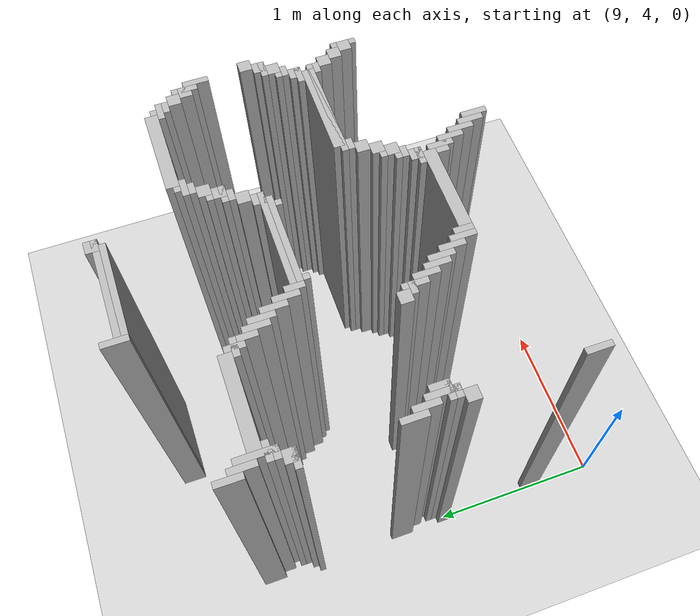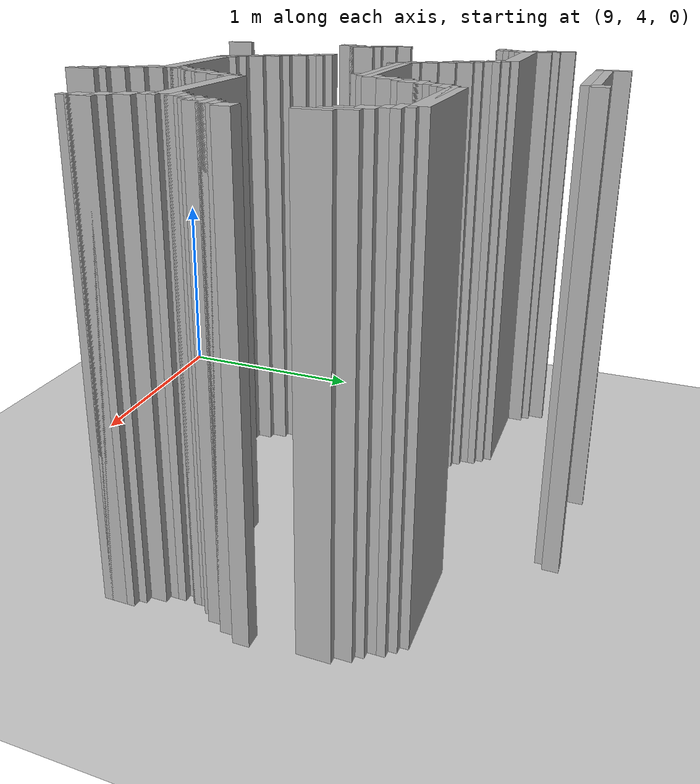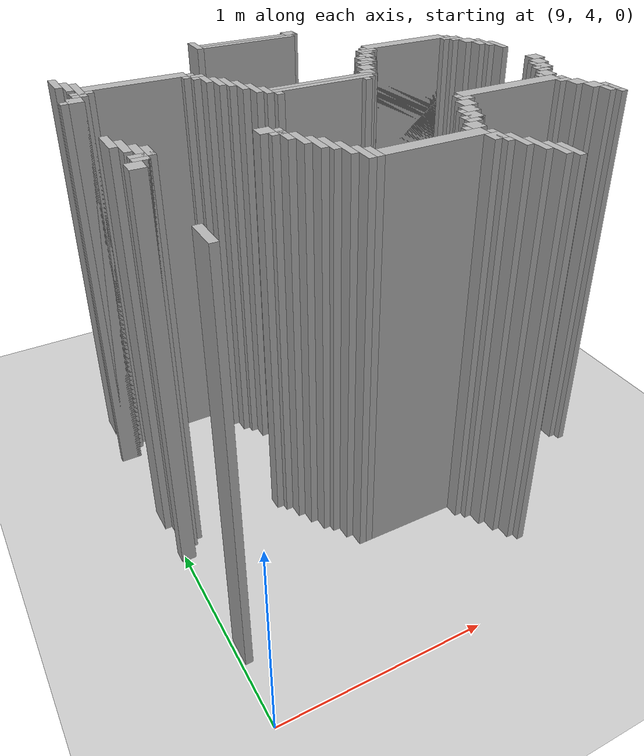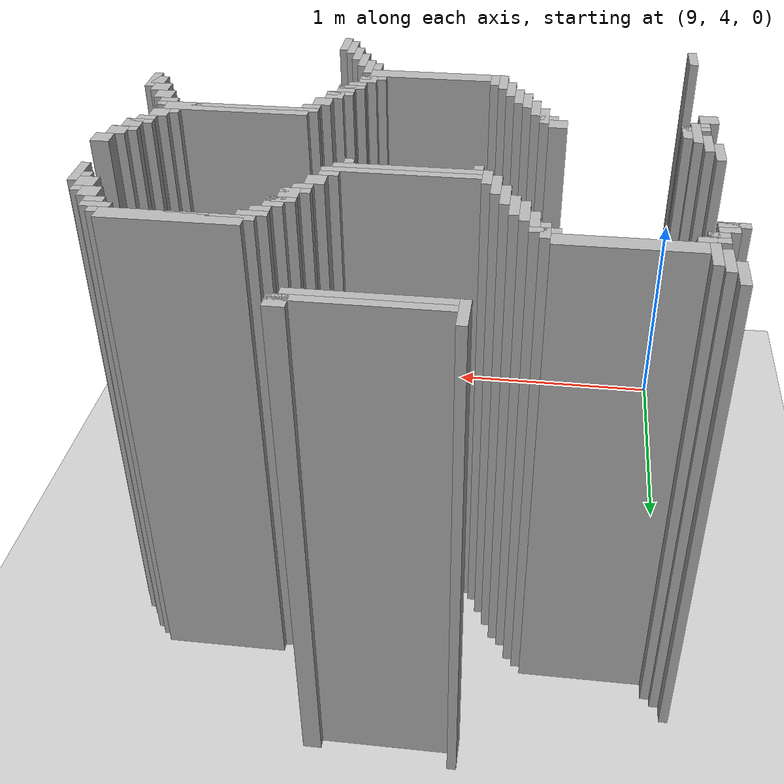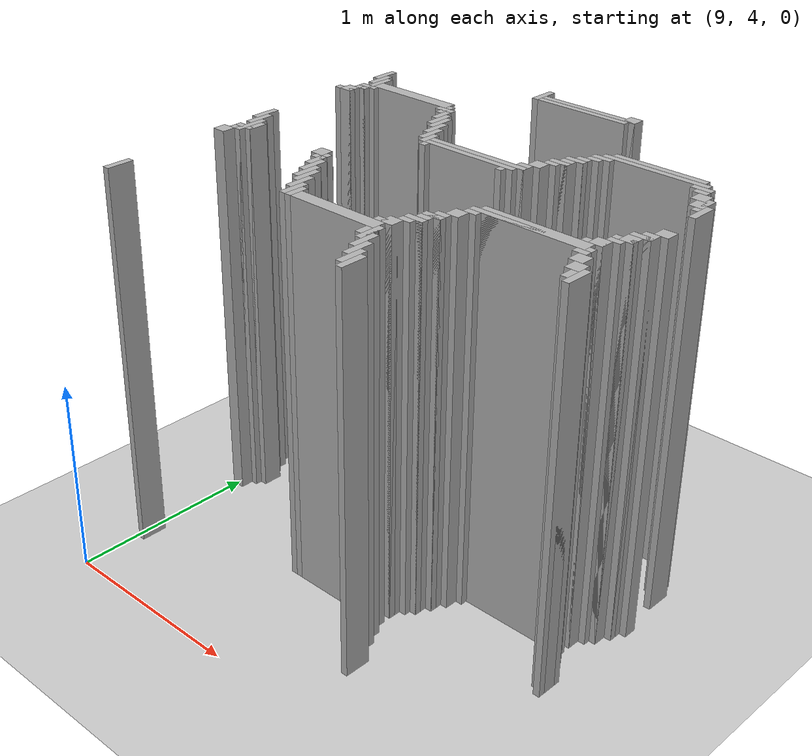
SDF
<sdf version="1.6">
 <world name="slam_world">
  <model name="ground_plane">
   <static>true</static>
   <link name="link">
    <collision name="collision">
     <geometry><plane><normal>0 0 1</normal><size>100 100</size></plane></geometry>
    </collision>
    <visual name="visual">
     <geometry><plane><normal>0 0 1</normal><size>100 100</size></plane></geometry>
     <material>
      <ambient>0.8 0.8 0.8 1</ambient>
      <diffuse>0.8 0.8 0.8 1</diffuse>
      <specular>0.8 0.8 0.8 1</specular>
     </material>
    </visual>
   </link>
  </model>
  <model name="wall_3646">
   <static>true</static>
   <pose>9.796983758700696 6.438515081206496 1.0 0 0 0</pose>
   <link name="link">
    <collision name="collision">
     <geometry><box><size>0.03480278422273782 0.13921113689095127 2.0</size></box></geometry>
    </collision>
    <visual name="visual">
     <geometry><box><size>0.03480278422273782 0.13921113689095127 2.0</size></box></geometry>
     <material><ambient>0.5 0.5 0.5 1</ambient><diffuse>0.7 0.7 0.7 1</diffuse></material>
    </visual>
   </link>
  </model>
  <model name="wall_3655">
   <static>true</static>
   <pose>10.336426914153131 6.438515081206496 1.0 0 0 0</pose>
   <link name="link">
    <collision name="collision">
     <geometry><box><size>0.06960556844547564 0.06960556844547564 2.0</size></box></geometry>
    </collision>
    <visual name="visual">
     <geometry><box><size>0.06960556844547564 0.06960556844547564 2.0</size></box></geometry>
     <material><ambient>0.5 0.5 0.5 1</ambient><diffuse>0.7 0.7 0.7 1</diffuse></material>
    </visual>
   </link>
  </model>
  <model name="wall_3667">
   <static>true</static>
   <pose>10.092807424593968 6.421113689095128 1.0 0 0 0</pose>
   <link name="link">
    <collision name="collision">
     <geometry><box><size>0.5568445475638051 0.03480278422273782 2.0</size></box></geometry>
    </collision>
    <visual name="visual">
     <geometry><box><size>0.5568445475638051 0.03480278422273782 2.0</size></box></geometry>
     <material><ambient>0.5 0.5 0.5 1</ambient><diffuse>0.7 0.7 0.7 1</diffuse></material>
    </visual>
   </link>
  </model>
  <model name="wall_3675">
   <static>true</static>
   <pose>10.075406032482599 6.386310904872389 1.0 0 0 0</pose>
   <link name="link">
    <collision name="collision">
     <geometry><box><size>0.5220417633410672 0.03480278422273782 2.0</size></box></geometry>
    </collision>
    <visual name="visual">
     <geometry><box><size>0.5220417633410672 0.03480278422273782 2.0</size></box></geometry>
     <material><ambient>0.5 0.5 0.5 1</ambient><diffuse>0.7 0.7 0.7 1</diffuse></material>
    </visual>
   </link>
  </model>
  <model name="wall_3748">
   <static>true</static>
   <pose>8.996519721577727 6.125290023201856 1.0 0 0 0</pose>
   <link name="link">
    <collision name="collision">
     <geometry><box><size>0.03480278422273782 0.13921113689095127 2.0</size></box></geometry>
    </collision>
    <visual name="visual">
     <geometry><box><size>0.03480278422273782 0.13921113689095127 2.0</size></box></geometry>
     <material><ambient>0.5 0.5 0.5 1</ambient><diffuse>0.7 0.7 0.7 1</diffuse></material>
    </visual>
   </link>
  </model>
  <model name="wall_3765">
   <static>true</static>
   <pose>9.031322505800464 6.05568445475638 1.0 0 0 0</pose>
   <link name="link">
    <collision name="collision">
     <geometry><box><size>0.03480278422273782 0.13921113689095127 2.0</size></box></geometry>
    </collision>
    <visual name="visual">
     <geometry><box><size>0.03480278422273782 0.13921113689095127 2.0</size></box></geometry>
     <material><ambient>0.5 0.5 0.5 1</ambient><diffuse>0.7 0.7 0.7 1</diffuse></material>
    </visual>
   </link>
  </model>
  <model name="wall_3778">
   <static>true</static>
   <pose>9.066125290023201 5.986078886310905 1.0 0 0 0</pose>
   <link name="link">
    <collision name="collision">
     <geometry><box><size>0.03480278422273782 0.2088167053364269 2.0</size></box></geometry>
    </collision>
    <visual name="visual">
     <geometry><box><size>0.03480278422273782 0.2088167053364269 2.0</size></box></geometry>
     <material><ambient>0.5 0.5 0.5 1</ambient><diffuse>0.7 0.7 0.7 1</diffuse></material>
    </visual>
   </link>
  </model>
  <model name="wall_3794">
   <static>true</static>
   <pose>9.327146171693736 5.986078886310905 1.0 0 0 0</pose>
   <link name="link">
    <collision name="collision">
     <geometry><box><size>0.4872389791183295 0.06960556844547564 2.0</size></box></geometry>
    </collision>
    <visual name="visual">
     <geometry><box><size>0.4872389791183295 0.06960556844547564 2.0</size></box></geometry>
     <material><ambient>0.5 0.5 0.5 1</ambient><diffuse>0.7 0.7 0.7 1</diffuse></material>
    </visual>
   </link>
  </model>
  <model name="wall_3795">
   <static>true</static>
   <pose>10.788863109048723 5.986078886310905 1.0 0 0 0</pose>
   <link name="link">
    <collision name="collision">
     <geometry><box><size>0.4872389791183295 0.06960556844547564 2.0</size></box></geometry>
    </collision>
    <visual name="visual">
     <geometry><box><size>0.4872389791183295 0.06960556844547564 2.0</size></box></geometry>
     <material><ambient>0.5 0.5 0.5 1</ambient><diffuse>0.7 0.7 0.7 1</diffuse></material>
    </visual>
   </link>
  </model>
  <model name="wall_3805">
   <static>true</static>
   <pose>9.588167053364268 5.933874709976798 1.0 0 0 0</pose>
   <link name="link">
    <collision name="collision">
     <geometry><box><size>0.03480278422273782 0.10440835266821345 2.0</size></box></geometry>
    </collision>
    <visual name="visual">
     <geometry><box><size>0.03480278422273782 0.10440835266821345 2.0</size></box></geometry>
     <material><ambient>0.5 0.5 0.5 1</ambient><diffuse>0.7 0.7 0.7 1</diffuse></material>
    </visual>
   </link>
  </model>
  <model name="wall_3806">
   <static>true</static>
   <pose>10.788863109048723 5.968677494199536 1.0 0 0 0</pose>
   <link name="link">
    <collision name="collision">
     <geometry><box><size>0.5568445475638051 0.03480278422273782 2.0</size></box></geometry>
    </collision>
    <visual name="visual">
     <geometry><box><size>0.5568445475638051 0.03480278422273782 2.0</size></box></geometry>
     <material><ambient>0.5 0.5 0.5 1</ambient><diffuse>0.7 0.7 0.7 1</diffuse></material>
    </visual>
   </link>
  </model>
  <model name="wall_3818">
   <static>true</static>
   <pose>9.066125290023201 5.933874709976798 1.0 0 0 0</pose>
   <link name="link">
    <collision name="collision">
     <geometry><box><size>0.10440835266821345 0.03480278422273782 2.0</size></box></geometry>
    </collision>
    <visual name="visual">
     <geometry><box><size>0.10440835266821345 0.03480278422273782 2.0</size></box></geometry>
     <material><ambient>0.5 0.5 0.5 1</ambient><diffuse>0.7 0.7 0.7 1</diffuse></material>
    </visual>
   </link>
  </model>
  <model name="wall_3819">
   <static>true</static>
   <pose>9.588167053364268 5.933874709976798 1.0 0 0 0</pose>
   <link name="link">
    <collision name="collision">
     <geometry><box><size>0.10440835266821345 0.03480278422273782 2.0</size></box></geometry>
    </collision>
    <visual name="visual">
     <geometry><box><size>0.10440835266821345 0.03480278422273782 2.0</size></box></geometry>
     <material><ambient>0.5 0.5 0.5 1</ambient><diffuse>0.7 0.7 0.7 1</diffuse></material>
    </visual>
   </link>
  </model>
  <model name="wall_3820">
   <static>true</static>
   <pose>10.52784222737819 5.933874709976798 1.0 0 0 0</pose>
   <link name="link">
    <collision name="collision">
     <geometry><box><size>0.10440835266821345 0.03480278422273782 2.0</size></box></geometry>
    </collision>
    <visual name="visual">
     <geometry><box><size>0.10440835266821345 0.03480278422273782 2.0</size></box></geometry>
     <material><ambient>0.5 0.5 0.5 1</ambient><diffuse>0.7 0.7 0.7 1</diffuse></material>
    </visual>
   </link>
  </model>
  <model name="wall_3821">
   <static>true</static>
   <pose>11.049883990719257 5.933874709976798 1.0 0 0 0</pose>
   <link name="link">
    <collision name="collision">
     <geometry><box><size>0.10440835266821345 0.03480278422273782 2.0</size></box></geometry>
    </collision>
    <visual name="visual">
     <geometry><box><size>0.10440835266821345 0.03480278422273782 2.0</size></box></geometry>
     <material><ambient>0.5 0.5 0.5 1</ambient><diffuse>0.7 0.7 0.7 1</diffuse></material>
    </visual>
   </link>
  </model>
  <model name="wall_3832">
   <static>true</static>
   <pose>9.048723897911833 5.89907192575406 1.0 0 0 0</pose>
   <link name="link">
    <collision name="collision">
     <geometry><box><size>0.06960556844547564 0.03480278422273782 2.0</size></box></geometry>
    </collision>
    <visual name="visual">
     <geometry><box><size>0.06960556844547564 0.03480278422273782 2.0</size></box></geometry>
     <material><ambient>0.5 0.5 0.5 1</ambient><diffuse>0.7 0.7 0.7 1</diffuse></material>
    </visual>
   </link>
  </model>
  <model name="wall_3833">
   <static>true</static>
   <pose>9.622969837587007 5.864269141531322 1.0 0 0 0</pose>
   <link name="link">
    <collision name="collision">
     <geometry><box><size>0.03480278422273782 0.10440835266821345 2.0</size></box></geometry>
    </collision>
    <visual name="visual">
     <geometry><box><size>0.03480278422273782 0.10440835266821345 2.0</size></box></geometry>
     <material><ambient>0.5 0.5 0.5 1</ambient><diffuse>0.7 0.7 0.7 1</diffuse></material>
    </visual>
   </link>
  </model>
  <model name="wall_3834">
   <static>true</static>
   <pose>10.51044083526682 5.89907192575406 1.0 0 0 0</pose>
   <link name="link">
    <collision name="collision">
     <geometry><box><size>0.06960556844547564 0.03480278422273782 2.0</size></box></geometry>
    </collision>
    <visual name="visual">
     <geometry><box><size>0.06960556844547564 0.03480278422273782 2.0</size></box></geometry>
     <material><ambient>0.5 0.5 0.5 1</ambient><diffuse>0.7 0.7 0.7 1</diffuse></material>
    </visual>
   </link>
  </model>
  <model name="wall_3835">
   <static>true</static>
   <pose>11.067285382830626 5.89907192575406 1.0 0 0 0</pose>
   <link name="link">
    <collision name="collision">
     <geometry><box><size>0.06960556844547564 0.03480278422273782 2.0</size></box></geometry>
    </collision>
    <visual name="visual">
     <geometry><box><size>0.06960556844547564 0.03480278422273782 2.0</size></box></geometry>
     <material><ambient>0.5 0.5 0.5 1</ambient><diffuse>0.7 0.7 0.7 1</diffuse></material>
    </visual>
   </link>
  </model>
  <model name="wall_3847">
   <static>true</static>
   <pose>9.013921113689095 5.846867749419953 1.0 0 0 0</pose>
   <link name="link">
    <collision name="collision">
     <geometry><box><size>0.06960556844547564 0.06960556844547564 2.0</size></box></geometry>
    </collision>
    <visual name="visual">
     <geometry><box><size>0.06960556844547564 0.06960556844547564 2.0</size></box></geometry>
     <material><ambient>0.5 0.5 0.5 1</ambient><diffuse>0.7 0.7 0.7 1</diffuse></material>
    </visual>
   </link>
  </model>
  <model name="wall_3848">
   <static>true</static>
   <pose>9.657772621809745 5.812064965197216 1.0 0 0 0</pose>
   <link name="link">
    <collision name="collision">
     <geometry><box><size>0.03480278422273782 0.13921113689095127 2.0</size></box></geometry>
    </collision>
    <visual name="visual">
     <geometry><box><size>0.03480278422273782 0.13921113689095127 2.0</size></box></geometry>
     <material><ambient>0.5 0.5 0.5 1</ambient><diffuse>0.7 0.7 0.7 1</diffuse></material>
    </visual>
   </link>
  </model>
  <model name="wall_3849">
   <static>true</static>
   <pose>10.475638051044083 5.846867749419953 1.0 0 0 0</pose>
   <link name="link">
    <collision name="collision">
     <geometry><box><size>0.06960556844547564 0.06960556844547564 2.0</size></box></geometry>
    </collision>
    <visual name="visual">
     <geometry><box><size>0.06960556844547564 0.06960556844547564 2.0</size></box></geometry>
     <material><ambient>0.5 0.5 0.5 1</ambient><diffuse>0.7 0.7 0.7 1</diffuse></material>
    </visual>
   </link>
  </model>
  <model name="wall_3850">
   <static>true</static>
   <pose>11.102088167053363 5.846867749419953 1.0 0 0 0</pose>
   <link name="link">
    <collision name="collision">
     <geometry><box><size>0.06960556844547564 0.06960556844547564 2.0</size></box></geometry>
    </collision>
    <visual name="visual">
     <geometry><box><size>0.06960556844547564 0.06960556844547564 2.0</size></box></geometry>
     <material><ambient>0.5 0.5 0.5 1</ambient><diffuse>0.7 0.7 0.7 1</diffuse></material>
    </visual>
   </link>
  </model>
  <model name="wall_3863">
   <static>true</static>
   <pose>8.996519721577727 5.8294663573085845 1.0 0 0 0</pose>
   <link name="link">
    <collision name="collision">
     <geometry><box><size>0.10440835266821345 0.03480278422273782 2.0</size></box></geometry>
    </collision>
    <visual name="visual">
     <geometry><box><size>0.10440835266821345 0.03480278422273782 2.0</size></box></geometry>
     <material><ambient>0.5 0.5 0.5 1</ambient><diffuse>0.7 0.7 0.7 1</diffuse></material>
    </visual>
   </link>
  </model>
  <model name="wall_3864">
   <static>true</static>
   <pose>9.692575406032482 5.7772621809744775 1.0 0 0 0</pose>
   <link name="link">
    <collision name="collision">
     <geometry><box><size>0.03480278422273782 0.13921113689095127 2.0</size></box></geometry>
    </collision>
    <visual name="visual">
     <geometry><box><size>0.03480278422273782 0.13921113689095127 2.0</size></box></geometry>
     <material><ambient>0.5 0.5 0.5 1</ambient><diffuse>0.7 0.7 0.7 1</diffuse></material>
    </visual>
   </link>
  </model>
  <model name="wall_3865">
   <static>true</static>
   <pose>10.458236658932714 5.8294663573085845 1.0 0 0 0</pose>
   <link name="link">
    <collision name="collision">
     <geometry><box><size>0.10440835266821345 0.03480278422273782 2.0</size></box></geometry>
    </collision>
    <visual name="visual">
     <geometry><box><size>0.10440835266821345 0.03480278422273782 2.0</size></box></geometry>
     <material><ambient>0.5 0.5 0.5 1</ambient><diffuse>0.7 0.7 0.7 1</diffuse></material>
    </visual>
   </link>
  </model>
  <model name="wall_3866">
   <static>true</static>
   <pose>11.154292343387471 5.7772621809744775 1.0 0 0 0</pose>
   <link name="link">
    <collision name="collision">
     <geometry><box><size>0.03480278422273782 0.13921113689095127 2.0</size></box></geometry>
    </collision>
    <visual name="visual">
     <geometry><box><size>0.03480278422273782 0.13921113689095127 2.0</size></box></geometry>
     <material><ambient>0.5 0.5 0.5 1</ambient><diffuse>0.7 0.7 0.7 1</diffuse></material>
    </visual>
   </link>
  </model>
  <model name="wall_3879">
   <static>true</static>
   <pose>10.440835266821345 5.7772621809744775 1.0 0 0 0</pose>
   <link name="link">
    <collision name="collision">
     <geometry><box><size>0.06960556844547564 0.06960556844547564 2.0</size></box></geometry>
    </collision>
    <visual name="visual">
     <geometry><box><size>0.06960556844547564 0.06960556844547564 2.0</size></box></geometry>
     <material><ambient>0.5 0.5 0.5 1</ambient><diffuse>0.7 0.7 0.7 1</diffuse></material>
    </visual>
   </link>
  </model>
  <model name="wall_3880">
   <static>true</static>
   <pose>11.1368909512761 5.7772621809744775 1.0 0 0 0</pose>
   <link name="link">
    <collision name="collision">
     <geometry><box><size>0.06960556844547564 0.06960556844547564 2.0</size></box></geometry>
    </collision>
    <visual name="visual">
     <geometry><box><size>0.06960556844547564 0.06960556844547564 2.0</size></box></geometry>
     <material><ambient>0.5 0.5 0.5 1</ambient><diffuse>0.7 0.7 0.7 1</diffuse></material>
    </visual>
   </link>
  </model>
  <model name="wall_3893">
   <static>true</static>
   <pose>9.72737819025522 5.707656612529002 1.0 0 0 0</pose>
   <link name="link">
    <collision name="collision">
     <geometry><box><size>0.03480278422273782 0.13921113689095127 2.0</size></box></geometry>
    </collision>
    <visual name="visual">
     <geometry><box><size>0.03480278422273782 0.13921113689095127 2.0</size></box></geometry>
     <material><ambient>0.5 0.5 0.5 1</ambient><diffuse>0.7 0.7 0.7 1</diffuse></material>
    </visual>
   </link>
  </model>
  <model name="wall_3894">
   <static>true</static>
   <pose>10.423433874709977 5.759860788863109 1.0 0 0 0</pose>
   <link name="link">
    <collision name="collision">
     <geometry><box><size>0.10440835266821345 0.03480278422273782 2.0</size></box></geometry>
    </collision>
    <visual name="visual">
     <geometry><box><size>0.10440835266821345 0.03480278422273782 2.0</size></box></geometry>
     <material><ambient>0.5 0.5 0.5 1</ambient><diffuse>0.7 0.7 0.7 1</diffuse></material>
    </visual>
   </link>
  </model>
  <model name="wall_3895">
   <static>true</static>
   <pose>11.189095127610209 5.707656612529002 1.0 0 0 0</pose>
   <link name="link">
    <collision name="collision">
     <geometry><box><size>0.03480278422273782 0.13921113689095127 2.0</size></box></geometry>
    </collision>
    <visual name="visual">
     <geometry><box><size>0.03480278422273782 0.13921113689095127 2.0</size></box></geometry>
     <material><ambient>0.5 0.5 0.5 1</ambient><diffuse>0.7 0.7 0.7 1</diffuse></material>
    </visual>
   </link>
  </model>
  <model name="wall_3904">
   <static>true</static>
   <pose>10.406032482598608 5.725058004640371 1.0 0 0 0</pose>
   <link name="link">
    <collision name="collision">
     <geometry><box><size>0.06960556844547564 0.03480278422273782 2.0</size></box></geometry>
    </collision>
    <visual name="visual">
     <geometry><box><size>0.06960556844547564 0.03480278422273782 2.0</size></box></geometry>
     <material><ambient>0.5 0.5 0.5 1</ambient><diffuse>0.7 0.7 0.7 1</diffuse></material>
    </visual>
   </link>
  </model>
  <model name="wall_3917">
   <static>true</static>
   <pose>9.762180974477959 5.638051044083526 1.0 0 0 0</pose>
   <link name="link">
    <collision name="collision">
     <geometry><box><size>0.03480278422273782 0.13921113689095127 2.0</size></box></geometry>
    </collision>
    <visual name="visual">
     <geometry><box><size>0.03480278422273782 0.13921113689095127 2.0</size></box></geometry>
     <material><ambient>0.5 0.5 0.5 1</ambient><diffuse>0.7 0.7 0.7 1</diffuse></material>
    </visual>
   </link>
  </model>
  <model name="wall_3918">
   <static>true</static>
   <pose>10.37122969837587 5.672853828306264 1.0 0 0 0</pose>
   <link name="link">
    <collision name="collision">
     <geometry><box><size>0.06960556844547564 0.06960556844547564 2.0</size></box></geometry>
    </collision>
    <visual name="visual">
     <geometry><box><size>0.06960556844547564 0.06960556844547564 2.0</size></box></geometry>
     <material><ambient>0.5 0.5 0.5 1</ambient><diffuse>0.7 0.7 0.7 1</diffuse></material>
    </visual>
   </link>
  </model>
  <model name="wall_3933">
   <static>true</static>
   <pose>9.796983758700696 5.58584686774942 1.0 0 0 0</pose>
   <link name="link">
    <collision name="collision">
     <geometry><box><size>0.03480278422273782 0.10440835266821345 2.0</size></box></geometry>
    </collision>
    <visual name="visual">
     <geometry><box><size>0.03480278422273782 0.10440835266821345 2.0</size></box></geometry>
     <material><ambient>0.5 0.5 0.5 1</ambient><diffuse>0.7 0.7 0.7 1</diffuse></material>
    </visual>
   </link>
  </model>
  <model name="wall_3934">
   <static>true</static>
   <pose>10.336426914153131 5.603248259860789 1.0 0 0 0</pose>
   <link name="link">
    <collision name="collision">
     <geometry><box><size>0.06960556844547564 0.06960556844547564 2.0</size></box></geometry>
    </collision>
    <visual name="visual">
     <geometry><box><size>0.06960556844547564 0.06960556844547564 2.0</size></box></geometry>
     <material><ambient>0.5 0.5 0.5 1</ambient><diffuse>0.7 0.7 0.7 1</diffuse></material>
    </visual>
   </link>
  </model>
  <model name="wall_3949">
   <static>true</static>
   <pose>10.092807424593968 5.58584686774942 1.0 0 0 0</pose>
   <link name="link">
    <collision name="collision">
     <geometry><box><size>0.5568445475638051 0.03480278422273782 2.0</size></box></geometry>
    </collision>
    <visual name="visual">
     <geometry><box><size>0.5568445475638051 0.03480278422273782 2.0</size></box></geometry>
     <material><ambient>0.5 0.5 0.5 1</ambient><diffuse>0.7 0.7 0.7 1</diffuse></material>
    </visual>
   </link>
  </model>
  <model name="wall_3963">
   <static>true</static>
   <pose>10.075406032482599 5.551044083526682 1.0 0 0 0</pose>
   <link name="link">
    <collision name="collision">
     <geometry><box><size>0.5220417633410672 0.03480278422273782 2.0</size></box></geometry>
    </collision>
    <visual name="visual">
     <geometry><box><size>0.5220417633410672 0.03480278422273782 2.0</size></box></geometry>
     <material><ambient>0.5 0.5 0.5 1</ambient><diffuse>0.7 0.7 0.7 1</diffuse></material>
    </visual>
   </link>
  </model>
  <model name="wall_3978">
   <static>true</static>
   <pose>9.831786542923433 5.516241299303944 1.0 0 0 0</pose>
   <link name="link">
    <collision name="collision">
     <geometry><box><size>0.03480278422273782 0.03480278422273782 2.0</size></box></geometry>
    </collision>
    <visual name="visual">
     <geometry><box><size>0.03480278422273782 0.03480278422273782 2.0</size></box></geometry>
     <material><ambient>0.5 0.5 0.5 1</ambient><diffuse>0.7 0.7 0.7 1</diffuse></material>
    </visual>
   </link>
  </model>
  <model name="wall_3979">
   <static>true</static>
   <pose>10.284222737819025 5.516241299303944 1.0 0 0 0</pose>
   <link name="link">
    <collision name="collision">
     <geometry><box><size>0.03480278422273782 0.03480278422273782 2.0</size></box></geometry>
    </collision>
    <visual name="visual">
     <geometry><box><size>0.03480278422273782 0.03480278422273782 2.0</size></box></geometry>
     <material><ambient>0.5 0.5 0.5 1</ambient><diffuse>0.7 0.7 0.7 1</diffuse></material>
    </visual>
   </link>
  </model>
  <model name="wall_4006">
   <static>true</static>
   <pose>11.206496519721577 5.4292343387471 1.0 0 0 0</pose>
   <link name="link">
    <collision name="collision">
     <geometry><box><size>0.06960556844547564 0.06960556844547564 2.0</size></box></geometry>
    </collision>
    <visual name="visual">
     <geometry><box><size>0.06960556844547564 0.06960556844547564 2.0</size></box></geometry>
     <material><ambient>0.5 0.5 0.5 1</ambient><diffuse>0.7 0.7 0.7 1</diffuse></material>
    </visual>
   </link>
  </model>
  <model name="wall_4019">
   <static>true</static>
   <pose>11.17169373549884 5.359628770301624 1.0 0 0 0</pose>
   <link name="link">
    <collision name="collision">
     <geometry><box><size>0.06960556844547564 0.06960556844547564 2.0</size></box></geometry>
    </collision>
    <visual name="visual">
     <geometry><box><size>0.06960556844547564 0.06960556844547564 2.0</size></box></geometry>
     <material><ambient>0.5 0.5 0.5 1</ambient><diffuse>0.7 0.7 0.7 1</diffuse></material>
    </visual>
   </link>
  </model>
  <model name="wall_4031">
   <static>true</static>
   <pose>8.996519721577727 5.290023201856148 1.0 0 0 0</pose>
   <link name="link">
    <collision name="collision">
     <geometry><box><size>0.03480278422273782 0.13921113689095127 2.0</size></box></geometry>
    </collision>
    <visual name="visual">
     <geometry><box><size>0.03480278422273782 0.13921113689095127 2.0</size></box></geometry>
     <material><ambient>0.5 0.5 0.5 1</ambient><diffuse>0.7 0.7 0.7 1</diffuse></material>
    </visual>
   </link>
  </model>
  <model name="wall_4032">
   <static>true</static>
   <pose>11.154292343387471 5.342227378190255 1.0 0 0 0</pose>
   <link name="link">
    <collision name="collision">
     <geometry><box><size>0.10440835266821345 0.03480278422273782 2.0</size></box></geometry>
    </collision>
    <visual name="visual">
     <geometry><box><size>0.10440835266821345 0.03480278422273782 2.0</size></box></geometry>
     <material><ambient>0.5 0.5 0.5 1</ambient><diffuse>0.7 0.7 0.7 1</diffuse></material>
    </visual>
   </link>
  </model>
  <model name="wall_4040">
   <static>true</static>
   <pose>11.1368909512761 5.290023201856148 1.0 0 0 0</pose>
   <link name="link">
    <collision name="collision">
     <geometry><box><size>0.06960556844547564 0.06960556844547564 2.0</size></box></geometry>
    </collision>
    <visual name="visual">
     <geometry><box><size>0.06960556844547564 0.06960556844547564 2.0</size></box></geometry>
     <material><ambient>0.5 0.5 0.5 1</ambient><diffuse>0.7 0.7 0.7 1</diffuse></material>
    </visual>
   </link>
  </model>
  <model name="wall_4051">
   <static>true</static>
   <pose>9.031322505800464 5.220417633410673 1.0 0 0 0</pose>
   <link name="link">
    <collision name="collision">
     <geometry><box><size>0.03480278422273782 0.13921113689095127 2.0</size></box></geometry>
    </collision>
    <visual name="visual">
     <geometry><box><size>0.03480278422273782 0.13921113689095127 2.0</size></box></geometry>
     <material><ambient>0.5 0.5 0.5 1</ambient><diffuse>0.7 0.7 0.7 1</diffuse></material>
    </visual>
   </link>
  </model>
  <model name="wall_4052">
   <static>true</static>
   <pose>11.119489559164732 5.27262180974478 1.0 0 0 0</pose>
   <link name="link">
    <collision name="collision">
     <geometry><box><size>0.10440835266821345 0.03480278422273782 2.0</size></box></geometry>
    </collision>
    <visual name="visual">
     <geometry><box><size>0.10440835266821345 0.03480278422273782 2.0</size></box></geometry>
     <material><ambient>0.5 0.5 0.5 1</ambient><diffuse>0.7 0.7 0.7 1</diffuse></material>
    </visual>
   </link>
  </model>
  <model name="wall_4060">
   <static>true</static>
   <pose>11.102088167053363 5.237819025522041 1.0 0 0 0</pose>
   <link name="link">
    <collision name="collision">
     <geometry><box><size>0.06960556844547564 0.03480278422273782 2.0</size></box></geometry>
    </collision>
    <visual name="visual">
     <geometry><box><size>0.06960556844547564 0.03480278422273782 2.0</size></box></geometry>
     <material><ambient>0.5 0.5 0.5 1</ambient><diffuse>0.7 0.7 0.7 1</diffuse></material>
    </visual>
   </link>
  </model>
  <model name="wall_4070">
   <static>true</static>
   <pose>9.066125290023201 5.133410672853828 1.0 0 0 0</pose>
   <link name="link">
    <collision name="collision">
     <geometry><box><size>0.03480278422273782 0.17401392111368907 2.0</size></box></geometry>
    </collision>
    <visual name="visual">
     <geometry><box><size>0.03480278422273782 0.17401392111368907 2.0</size></box></geometry>
     <material><ambient>0.5 0.5 0.5 1</ambient><diffuse>0.7 0.7 0.7 1</diffuse></material>
    </visual>
   </link>
  </model>
  <model name="wall_4071">
   <static>true</static>
   <pose>11.067285382830626 5.185614849187935 1.0 0 0 0</pose>
   <link name="link">
    <collision name="collision">
     <geometry><box><size>0.06960556844547564 0.06960556844547564 2.0</size></box></geometry>
    </collision>
    <visual name="visual">
     <geometry><box><size>0.06960556844547564 0.06960556844547564 2.0</size></box></geometry>
     <material><ambient>0.5 0.5 0.5 1</ambient><diffuse>0.7 0.7 0.7 1</diffuse></material>
    </visual>
   </link>
  </model>
  <model name="wall_4083">
   <static>true</static>
   <pose>9.100928074245939 5.133410672853828 1.0 0 0 0</pose>
   <link name="link">
    <collision name="collision">
     <geometry><box><size>0.03480278422273782 0.10440835266821345 2.0</size></box></geometry>
    </collision>
    <visual name="visual">
     <geometry><box><size>0.03480278422273782 0.10440835266821345 2.0</size></box></geometry>
     <material><ambient>0.5 0.5 0.5 1</ambient><diffuse>0.7 0.7 0.7 1</diffuse></material>
    </visual>
   </link>
  </model>
  <model name="wall_4084">
   <static>true</static>
   <pose>11.049883990719257 5.168213457076566 1.0 0 0 0</pose>
   <link name="link">
    <collision name="collision">
     <geometry><box><size>0.10440835266821345 0.03480278422273782 2.0</size></box></geometry>
    </collision>
    <visual name="visual">
     <geometry><box><size>0.10440835266821345 0.03480278422273782 2.0</size></box></geometry>
     <material><ambient>0.5 0.5 0.5 1</ambient><diffuse>0.7 0.7 0.7 1</diffuse></material>
    </visual>
   </link>
  </model>
  <model name="wall_4094">
   <static>true</static>
   <pose>9.5707656612529 5.1160092807424595 1.0 0 0 0</pose>
   <link name="link">
    <collision name="collision">
     <geometry><box><size>0.06960556844547564 0.06960556844547564 2.0</size></box></geometry>
    </collision>
    <visual name="visual">
     <geometry><box><size>0.06960556844547564 0.06960556844547564 2.0</size></box></geometry>
     <material><ambient>0.5 0.5 0.5 1</ambient><diffuse>0.7 0.7 0.7 1</diffuse></material>
    </visual>
   </link>
  </model>
  <model name="wall_4095">
   <static>true</static>
   <pose>10.788863109048723 5.1160092807424595 1.0 0 0 0</pose>
   <link name="link">
    <collision name="collision">
     <geometry><box><size>0.5568445475638051 0.06960556844547564 2.0</size></box></geometry>
    </collision>
    <visual name="visual">
     <geometry><box><size>0.5568445475638051 0.06960556844547564 2.0</size></box></geometry>
     <material><ambient>0.5 0.5 0.5 1</ambient><diffuse>0.7 0.7 0.7 1</diffuse></material>
    </visual>
   </link>
  </model>
  <model name="wall_4105">
   <static>true</static>
   <pose>9.066125290023201 5.09860788863109 1.0 0 0 0</pose>
   <link name="link">
    <collision name="collision">
     <geometry><box><size>0.10440835266821345 0.03480278422273782 2.0</size></box></geometry>
    </collision>
    <visual name="visual">
     <geometry><box><size>0.10440835266821345 0.03480278422273782 2.0</size></box></geometry>
     <material><ambient>0.5 0.5 0.5 1</ambient><diffuse>0.7 0.7 0.7 1</diffuse></material>
    </visual>
   </link>
  </model>
  <model name="wall_4106">
   <static>true</static>
   <pose>9.622969837587007 5.046403712296984 1.0 0 0 0</pose>
   <link name="link">
    <collision name="collision">
     <geometry><box><size>0.03480278422273782 0.13921113689095127 2.0</size></box></geometry>
    </collision>
    <visual name="visual">
     <geometry><box><size>0.03480278422273782 0.13921113689095127 2.0</size></box></geometry>
     <material><ambient>0.5 0.5 0.5 1</ambient><diffuse>0.7 0.7 0.7 1</diffuse></material>
    </visual>
   </link>
  </model>
  <model name="wall_4107">
   <static>true</static>
   <pose>10.788863109048723 5.09860788863109 1.0 0 0 0</pose>
   <link name="link">
    <collision name="collision">
     <geometry><box><size>0.6264501160092807 0.03480278422273782 2.0</size></box></geometry>
    </collision>
    <visual name="visual">
     <geometry><box><size>0.6264501160092807 0.03480278422273782 2.0</size></box></geometry>
     <material><ambient>0.5 0.5 0.5 1</ambient><diffuse>0.7 0.7 0.7 1</diffuse></material>
    </visual>
   </link>
  </model>
  <model name="wall_4119">
   <static>true</static>
   <pose>9.048723897911833 5.0638051044083525 1.0 0 0 0</pose>
   <link name="link">
    <collision name="collision">
     <geometry><box><size>0.06960556844547564 0.03480278422273782 2.0</size></box></geometry>
    </collision>
    <visual name="visual">
     <geometry><box><size>0.06960556844547564 0.03480278422273782 2.0</size></box></geometry>
     <material><ambient>0.5 0.5 0.5 1</ambient><diffuse>0.7 0.7 0.7 1</diffuse></material>
    </visual>
   </link>
  </model>
  <model name="wall_4120">
   <static>true</static>
   <pose>9.605568445475638 5.0638051044083525 1.0 0 0 0</pose>
   <link name="link">
    <collision name="collision">
     <geometry><box><size>0.06960556844547564 0.03480278422273782 2.0</size></box></geometry>
    </collision>
    <visual name="visual">
     <geometry><box><size>0.06960556844547564 0.03480278422273782 2.0</size></box></geometry>
     <material><ambient>0.5 0.5 0.5 1</ambient><diffuse>0.7 0.7 0.7 1</diffuse></material>
    </visual>
   </link>
  </model>
  <model name="wall_4121">
   <static>true</static>
   <pose>10.51044083526682 5.0638051044083525 1.0 0 0 0</pose>
   <link name="link">
    <collision name="collision">
     <geometry><box><size>0.06960556844547564 0.03480278422273782 2.0</size></box></geometry>
    </collision>
    <visual name="visual">
     <geometry><box><size>0.06960556844547564 0.03480278422273782 2.0</size></box></geometry>
     <material><ambient>0.5 0.5 0.5 1</ambient><diffuse>0.7 0.7 0.7 1</diffuse></material>
    </visual>
   </link>
  </model>
  <model name="wall_4122">
   <static>true</static>
   <pose>11.067285382830626 5.0638051044083525 1.0 0 0 0</pose>
   <link name="link">
    <collision name="collision">
     <geometry><box><size>0.06960556844547564 0.03480278422273782 2.0</size></box></geometry>
    </collision>
    <visual name="visual">
     <geometry><box><size>0.06960556844547564 0.03480278422273782 2.0</size></box></geometry>
     <material><ambient>0.5 0.5 0.5 1</ambient><diffuse>0.7 0.7 0.7 1</diffuse></material>
    </visual>
   </link>
  </model>
  <model name="wall_4134">
   <static>true</static>
   <pose>9.013921113689095 5.0116009280742455 1.0 0 0 0</pose>
   <link name="link">
    <collision name="collision">
     <geometry><box><size>0.06960556844547564 0.06960556844547564 2.0</size></box></geometry>
    </collision>
    <visual name="visual">
     <geometry><box><size>0.06960556844547564 0.06960556844547564 2.0</size></box></geometry>
     <material><ambient>0.5 0.5 0.5 1</ambient><diffuse>0.7 0.7 0.7 1</diffuse></material>
    </visual>
   </link>
  </model>
  <model name="wall_4135">
   <static>true</static>
   <pose>9.657772621809745 4.976798143851508 1.0 0 0 0</pose>
   <link name="link">
    <collision name="collision">
     <geometry><box><size>0.03480278422273782 0.13921113689095127 2.0</size></box></geometry>
    </collision>
    <visual name="visual">
     <geometry><box><size>0.03480278422273782 0.13921113689095127 2.0</size></box></geometry>
     <material><ambient>0.5 0.5 0.5 1</ambient><diffuse>0.7 0.7 0.7 1</diffuse></material>
    </visual>
   </link>
  </model>
  <model name="wall_4136">
   <static>true</static>
   <pose>10.475638051044083 5.0116009280742455 1.0 0 0 0</pose>
   <link name="link">
    <collision name="collision">
     <geometry><box><size>0.06960556844547564 0.06960556844547564 2.0</size></box></geometry>
    </collision>
    <visual name="visual">
     <geometry><box><size>0.06960556844547564 0.06960556844547564 2.0</size></box></geometry>
     <material><ambient>0.5 0.5 0.5 1</ambient><diffuse>0.7 0.7 0.7 1</diffuse></material>
    </visual>
   </link>
  </model>
  <model name="wall_4137">
   <static>true</static>
   <pose>11.102088167053363 5.0116009280742455 1.0 0 0 0</pose>
   <link name="link">
    <collision name="collision">
     <geometry><box><size>0.06960556844547564 0.06960556844547564 2.0</size></box></geometry>
    </collision>
    <visual name="visual">
     <geometry><box><size>0.06960556844547564 0.06960556844547564 2.0</size></box></geometry>
     <material><ambient>0.5 0.5 0.5 1</ambient><diffuse>0.7 0.7 0.7 1</diffuse></material>
    </visual>
   </link>
  </model>
  <model name="wall_4150">
   <static>true</static>
   <pose>9.692575406032482 4.907192575406032 1.0 0 0 0</pose>
   <link name="link">
    <collision name="collision">
     <geometry><box><size>0.03480278422273782 0.13921113689095127 2.0</size></box></geometry>
    </collision>
    <visual name="visual">
     <geometry><box><size>0.03480278422273782 0.13921113689095127 2.0</size></box></geometry>
     <material><ambient>0.5 0.5 0.5 1</ambient><diffuse>0.7 0.7 0.7 1</diffuse></material>
    </visual>
   </link>
  </model>
  <model name="wall_4151">
   <static>true</static>
   <pose>10.440835266821345 4.94199535962877 1.0 0 0 0</pose>
   <link name="link">
    <collision name="collision">
     <geometry><box><size>0.06960556844547564 0.06960556844547564 2.0</size></box></geometry>
    </collision>
    <visual name="visual">
     <geometry><box><size>0.06960556844547564 0.06960556844547564 2.0</size></box></geometry>
     <material><ambient>0.5 0.5 0.5 1</ambient><diffuse>0.7 0.7 0.7 1</diffuse></material>
    </visual>
   </link>
  </model>
  <model name="wall_4152">
   <static>true</static>
   <pose>11.1368909512761 4.94199535962877 1.0 0 0 0</pose>
   <link name="link">
    <collision name="collision">
     <geometry><box><size>0.06960556844547564 0.06960556844547564 2.0</size></box></geometry>
    </collision>
    <visual name="visual">
     <geometry><box><size>0.06960556844547564 0.06960556844547564 2.0</size></box></geometry>
     <material><ambient>0.5 0.5 0.5 1</ambient><diffuse>0.7 0.7 0.7 1</diffuse></material>
    </visual>
   </link>
  </model>
  <model name="wall_4165">
   <static>true</static>
   <pose>9.72737819025522 4.872389791183294 1.0 0 0 0</pose>
   <link name="link">
    <collision name="collision">
     <geometry><box><size>0.03480278422273782 0.13921113689095127 2.0</size></box></geometry>
    </collision>
    <visual name="visual">
     <geometry><box><size>0.03480278422273782 0.13921113689095127 2.0</size></box></geometry>
     <material><ambient>0.5 0.5 0.5 1</ambient><diffuse>0.7 0.7 0.7 1</diffuse></material>
    </visual>
   </link>
  </model>
  <model name="wall_4166">
   <static>true</static>
   <pose>10.423433874709977 4.924593967517401 1.0 0 0 0</pose>
   <link name="link">
    <collision name="collision">
     <geometry><box><size>0.10440835266821345 0.03480278422273782 2.0</size></box></geometry>
    </collision>
    <visual name="visual">
     <geometry><box><size>0.10440835266821345 0.03480278422273782 2.0</size></box></geometry>
     <material><ambient>0.5 0.5 0.5 1</ambient><diffuse>0.7 0.7 0.7 1</diffuse></material>
    </visual>
   </link>
  </model>
  <model name="wall_4167">
   <static>true</static>
   <pose>11.189095127610209 4.872389791183294 1.0 0 0 0</pose>
   <link name="link">
    <collision name="collision">
     <geometry><box><size>0.03480278422273782 0.13921113689095127 2.0</size></box></geometry>
    </collision>
    <visual name="visual">
     <geometry><box><size>0.03480278422273782 0.13921113689095127 2.0</size></box></geometry>
     <material><ambient>0.5 0.5 0.5 1</ambient><diffuse>0.7 0.7 0.7 1</diffuse></material>
    </visual>
   </link>
  </model>
  <model name="wall_4177">
   <static>true</static>
   <pose>10.406032482598608 4.872389791183294 1.0 0 0 0</pose>
   <link name="link">
    <collision name="collision">
     <geometry><box><size>0.06960556844547564 0.06960556844547564 2.0</size></box></geometry>
    </collision>
    <visual name="visual">
     <geometry><box><size>0.06960556844547564 0.06960556844547564 2.0</size></box></geometry>
     <material><ambient>0.5 0.5 0.5 1</ambient><diffuse>0.7 0.7 0.7 1</diffuse></material>
    </visual>
   </link>
  </model>
  <model name="wall_4178">
   <static>true</static>
   <pose>11.17169373549884 4.872389791183294 1.0 0 0 0</pose>
   <link name="link">
    <collision name="collision">
     <geometry><box><size>0.06960556844547564 0.06960556844547564 2.0</size></box></geometry>
    </collision>
    <visual name="visual">
     <geometry><box><size>0.06960556844547564 0.06960556844547564 2.0</size></box></geometry>
     <material><ambient>0.5 0.5 0.5 1</ambient><diffuse>0.7 0.7 0.7 1</diffuse></material>
    </visual>
   </link>
  </model>
  <model name="wall_4190">
   <static>true</static>
   <pose>9.762180974477959 4.802784222737819 1.0 0 0 0</pose>
   <link name="link">
    <collision name="collision">
     <geometry><box><size>0.03480278422273782 0.13921113689095127 2.0</size></box></geometry>
    </collision>
    <visual name="visual">
     <geometry><box><size>0.03480278422273782 0.13921113689095127 2.0</size></box></geometry>
     <material><ambient>0.5 0.5 0.5 1</ambient><diffuse>0.7 0.7 0.7 1</diffuse></material>
    </visual>
   </link>
  </model>
  <model name="wall_4191">
   <static>true</static>
   <pose>10.38863109048724 4.854988399071925 1.0 0 0 0</pose>
   <link name="link">
    <collision name="collision">
     <geometry><box><size>0.10440835266821345 0.03480278422273782 2.0</size></box></geometry>
    </collision>
    <visual name="visual">
     <geometry><box><size>0.10440835266821345 0.03480278422273782 2.0</size></box></geometry>
     <material><ambient>0.5 0.5 0.5 1</ambient><diffuse>0.7 0.7 0.7 1</diffuse></material>
    </visual>
   </link>
  </model>
  <model name="wall_4200">
   <static>true</static>
   <pose>10.37122969837587 4.820185614849188 1.0 0 0 0</pose>
   <link name="link">
    <collision name="collision">
     <geometry><box><size>0.06960556844547564 0.03480278422273782 2.0</size></box></geometry>
    </collision>
    <visual name="visual">
     <geometry><box><size>0.06960556844547564 0.03480278422273782 2.0</size></box></geometry>
     <material><ambient>0.5 0.5 0.5 1</ambient><diffuse>0.7 0.7 0.7 1</diffuse></material>
    </visual>
   </link>
  </model>
  <model name="wall_4212">
   <static>true</static>
   <pose>9.796983758700696 4.7331786542923435 1.0 0 0 0</pose>
   <link name="link">
    <collision name="collision">
     <geometry><box><size>0.03480278422273782 0.13921113689095127 2.0</size></box></geometry>
    </collision>
    <visual name="visual">
     <geometry><box><size>0.03480278422273782 0.13921113689095127 2.0</size></box></geometry>
     <material><ambient>0.5 0.5 0.5 1</ambient><diffuse>0.7 0.7 0.7 1</diffuse></material>
    </visual>
   </link>
  </model>
  <model name="wall_4213">
   <static>true</static>
   <pose>10.336426914153131 4.767981438515081 1.0 0 0 0</pose>
   <link name="link">
    <collision name="collision">
     <geometry><box><size>0.06960556844547564 0.06960556844547564 2.0</size></box></geometry>
    </collision>
    <visual name="visual">
     <geometry><box><size>0.06960556844547564 0.06960556844547564 2.0</size></box></geometry>
     <material><ambient>0.5 0.5 0.5 1</ambient><diffuse>0.7 0.7 0.7 1</diffuse></material>
    </visual>
   </link>
  </model>
  <model name="wall_4226">
   <static>true</static>
   <pose>9.831786542923433 4.715777262180974 1.0 0 0 0</pose>
   <link name="link">
    <collision name="collision">
     <geometry><box><size>0.03480278422273782 0.10440835266821345 2.0</size></box></geometry>
    </collision>
    <visual name="visual">
     <geometry><box><size>0.03480278422273782 0.10440835266821345 2.0</size></box></geometry>
     <material><ambient>0.5 0.5 0.5 1</ambient><diffuse>0.7 0.7 0.7 1</diffuse></material>
    </visual>
   </link>
  </model>
  <model name="wall_4227">
   <static>true</static>
   <pose>10.319025522041763 4.750580046403712 1.0 0 0 0</pose>
   <link name="link">
    <collision name="collision">
     <geometry><box><size>0.10440835266821345 0.03480278422273782 2.0</size></box></geometry>
    </collision>
    <visual name="visual">
     <geometry><box><size>0.10440835266821345 0.03480278422273782 2.0</size></box></geometry>
     <material><ambient>0.5 0.5 0.5 1</ambient><diffuse>0.7 0.7 0.7 1</diffuse></material>
    </visual>
   </link>
  </model>
  <model name="wall_4239">
   <static>true</static>
   <pose>10.092807424593968 4.698375870069605 1.0 0 0 0</pose>
   <link name="link">
    <collision name="collision">
     <geometry><box><size>0.4872389791183295 0.06960556844547564 2.0</size></box></geometry>
    </collision>
    <visual name="visual">
     <geometry><box><size>0.4872389791183295 0.06960556844547564 2.0</size></box></geometry>
     <material><ambient>0.5 0.5 0.5 1</ambient><diffuse>0.7 0.7 0.7 1</diffuse></material>
    </visual>
   </link>
  </model>
  <model name="wall_4250">
   <static>true</static>
   <pose>10.3538283062645 4.6287703016241295 1.0 0 0 0</pose>
   <link name="link">
    <collision name="collision">
     <geometry><box><size>0.03480278422273782 0.13921113689095127 2.0</size></box></geometry>
    </collision>
    <visual name="visual">
     <geometry><box><size>0.03480278422273782 0.13921113689095127 2.0</size></box></geometry>
     <material><ambient>0.5 0.5 0.5 1</ambient><diffuse>0.7 0.7 0.7 1</diffuse></material>
    </visual>
   </link>
  </model>
  <model name="wall_4261">
   <static>true</static>
   <pose>10.336426914153131 4.6287703016241295 1.0 0 0 0</pose>
   <link name="link">
    <collision name="collision">
     <geometry><box><size>0.06960556844547564 0.06960556844547564 2.0</size></box></geometry>
    </collision>
    <visual name="visual">
     <geometry><box><size>0.06960556844547564 0.06960556844547564 2.0</size></box></geometry>
     <material><ambient>0.5 0.5 0.5 1</ambient><diffuse>0.7 0.7 0.7 1</diffuse></material>
    </visual>
   </link>
  </model>
  <model name="wall_4272">
   <static>true</static>
   <pose>10.38863109048724 4.559164733178654 1.0 0 0 0</pose>
   <link name="link">
    <collision name="collision">
     <geometry><box><size>0.03480278422273782 0.13921113689095127 2.0</size></box></geometry>
    </collision>
    <visual name="visual">
     <geometry><box><size>0.03480278422273782 0.13921113689095127 2.0</size></box></geometry>
     <material><ambient>0.5 0.5 0.5 1</ambient><diffuse>0.7 0.7 0.7 1</diffuse></material>
    </visual>
   </link>
  </model>
  <model name="wall_4288">
   <static>true</static>
   <pose>10.423433874709977 4.489559164733178 1.0 0 0 0</pose>
   <link name="link">
    <collision name="collision">
     <geometry><box><size>0.03480278422273782 0.13921113689095127 2.0</size></box></geometry>
    </collision>
    <visual name="visual">
     <geometry><box><size>0.03480278422273782 0.13921113689095127 2.0</size></box></geometry>
     <material><ambient>0.5 0.5 0.5 1</ambient><diffuse>0.7 0.7 0.7 1</diffuse></material>
    </visual>
   </link>
  </model>
  <model name="wall_4299">
   <static>true</static>
   <pose>10.458236658932714 4.419953596287703 1.0 0 0 0</pose>
   <link name="link">
    <collision name="collision">
     <geometry><box><size>0.03480278422273782 0.13921113689095127 2.0</size></box></geometry>
    </collision>
    <visual name="visual">
     <geometry><box><size>0.03480278422273782 0.13921113689095127 2.0</size></box></geometry>
     <material><ambient>0.5 0.5 0.5 1</ambient><diffuse>0.7 0.7 0.7 1</diffuse></material>
    </visual>
   </link>
  </model>
  <model name="wall_4309">
   <static>true</static>
   <pose>9.031322505800464 4.385150812064965 1.0 0 0 0</pose>
   <link name="link">
    <collision name="collision">
     <geometry><box><size>0.03480278422273782 0.13921113689095127 2.0</size></box></geometry>
    </collision>
    <visual name="visual">
     <geometry><box><size>0.03480278422273782 0.13921113689095127 2.0</size></box></geometry>
     <material><ambient>0.5 0.5 0.5 1</ambient><diffuse>0.7 0.7 0.7 1</diffuse></material>
    </visual>
   </link>
  </model>
  <model name="wall_4310">
   <static>true</static>
   <pose>10.493039443155451 4.385150812064965 1.0 0 0 0</pose>
   <link name="link">
    <collision name="collision">
     <geometry><box><size>0.03480278422273782 0.13921113689095127 2.0</size></box></geometry>
    </collision>
    <visual name="visual">
     <geometry><box><size>0.03480278422273782 0.13921113689095127 2.0</size></box></geometry>
     <material><ambient>0.5 0.5 0.5 1</ambient><diffuse>0.7 0.7 0.7 1</diffuse></material>
    </visual>
   </link>
  </model>
 </world>
</sdf>
